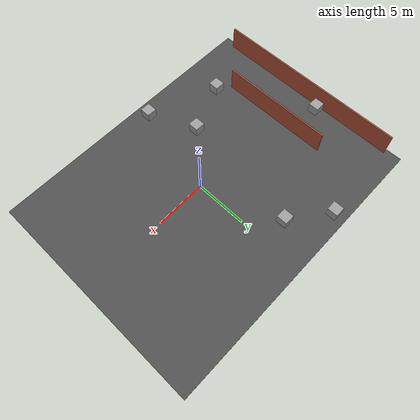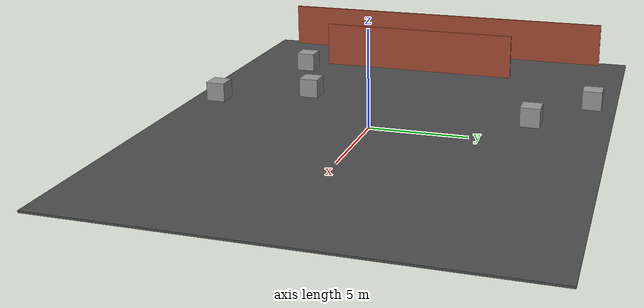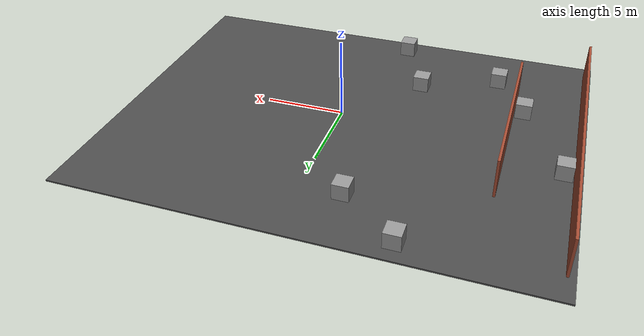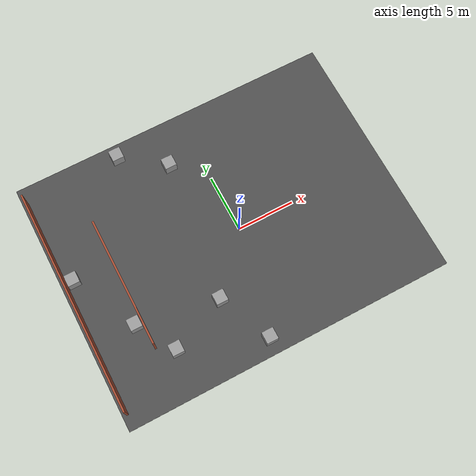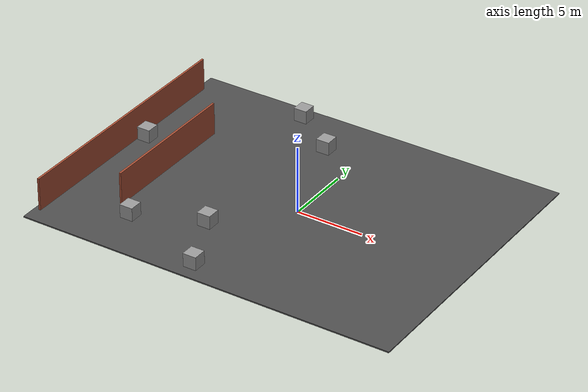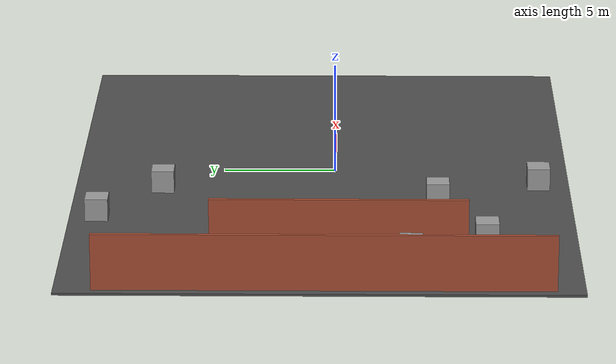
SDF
<sdf version="1.7">
 <world name="default">
  <model name="asphalt_plane">
   <static>1</static>
   <link name="link">
    <collision name="collision"><geometry><box><size>28.54 22.04 0.1</size></box></geometry></collision>
    <visual name="visual">
     <cast_shadows>0</cast_shadows>
     <geometry><box><size>28.54 22.04 0.1</size></box></geometry>
     <material>
      <script>
       <uri>model://asphalt_plane/materials/scripts</uri>
       <uri>model://asphalt_plane/materials/textures</uri>
       <name>vrc/asphalt</name>
      </script>
     </material>
    </visual>
   </link>
   <pose>-0.719505 0.551979 0 0 -0 0</pose>
  </model>
  <model name="unit_box_clone">
   <pose>-9.02992 -6.55581 0.55 0 -0 5.6e-05</pose>
   <link name="link">
    <inertial>
     <mass>1</mass>
     <inertia>
      <ixx>0.166667</ixx>
      <ixy>0</ixy>
      <ixz>0</ixz>
      <iyy>0.166667</iyy>
      <iyz>0</iyz>
      <izz>0.166667</izz>
     </inertia>
    </inertial>
    <collision name="collision"><geometry><box><size>1 1 1</size></box></geometry></collision>
    <visual name="visual">
     <geometry><box><size>1 1 1</size></box></geometry>
     <material>
      <script><name>Gazebo/Grey</name><uri>file://media/materials/scripts/gazebo.material</uri></script>
     </material>
    </visual>
   </link>
  </model>
  <model name="unit_box_clone_0">
   <pose>-2.13904 -9.0825 0.55 0 -0 3.9e-05</pose>
   <link name="link">
    <inertial>
     <mass>1</mass>
     <inertia>
      <ixx>0.166667</ixx>
      <ixy>0</ixy>
      <ixz>0</ixz>
      <iyy>0.166667</iyy>
      <iyz>0</iyz>
      <izz>0.166667</izz>
     </inertia>
    </inertial>
    <collision name="collision"><geometry><box><size>1 1 1</size></box></geometry></collision>
    <visual name="visual">
     <geometry><box><size>1 1 1</size></box></geometry>
     <material>
      <script><name>Gazebo/Grey</name><uri>file://media/materials/scripts/gazebo.material</uri></script>
     </material>
    </visual>
   </link>
  </model>
  <model name="unit_box_clone_11">
   <pose>-2.6168 7.65175 0.550002 -4e-06 -0 5.7e-05</pose>
   <link name="link">
    <inertial>
     <mass>1</mass>
     <inertia>
      <ixx>0.166667</ixx>
      <ixy>0</ixy>
      <ixz>0</ixz>
      <iyy>0.166667</iyy>
      <iyz>0</iyz>
      <izz>0.166667</izz>
     </inertia>
    </inertial>
    <collision name="collision"><geometry><box><size>1 1 1</size></box></geometry></collision>
    <visual name="visual">
     <geometry><box><size>1 1 1</size></box></geometry>
     <material>
      <script><name>Gazebo/Grey</name><uri>file://media/materials/scripts/gazebo.material</uri></script>
     </material>
    </visual>
   </link>
  </model>
  <model name="unit_box_clone_12">
   <pose>-6.20184 10.3429 0.550002 -4e-06 -0 5.5e-05</pose>
   <link name="link">
    <inertial>
     <mass>1</mass>
     <inertia>
      <ixx>0.166667</ixx>
      <ixy>0</ixy>
      <ixz>0</ixz>
      <iyy>0.166667</iyy>
      <iyz>0</iyz>
      <izz>0.166667</izz>
     </inertia>
    </inertial>
    <collision name="collision"><geometry><box><size>1 1 1</size></box></geometry></collision>
    <visual name="visual">
     <geometry><box><size>1 1 1</size></box></geometry>
     <material>
      <script><name>Gazebo/Grey</name><uri>file://media/materials/scripts/gazebo.material</uri></script>
     </material>
    </visual>
   </link>
  </model>
  <model name="unit_box_clone_14">
   <pose>-13.9085 2.23418 0.550002 -4e-06 0 4.3e-05</pose>
   <link name="link">
    <inertial>
     <mass>1</mass>
     <inertia>
      <ixx>0.166667</ixx>
      <ixy>0</ixy>
      <ixz>0</ixz>
      <iyy>0.166667</iyy>
      <iyz>0</iyz>
      <izz>0.166667</izz>
     </inertia>
    </inertial>
    <collision name="collision"><geometry><box><size>1 1 1</size></box></geometry></collision>
    <visual name="visual">
     <geometry><box><size>1 1 1</size></box></geometry>
     <material>
      <script><name>Gazebo/Grey</name><uri>file://media/materials/scripts/gazebo.material</uri></script>
     </material>
    </visual>
   </link>
  </model>
  <model name="unit_box_clone_16">
   <pose>-11.0431 -3.28247 0.550002 -4e-06 0 4.8e-05</pose>
   <link name="link">
    <inertial>
     <mass>1</mass>
     <inertia>
      <ixx>0.166667</ixx>
      <ixy>0</ixy>
      <ixz>0</ixz>
      <iyy>0.166667</iyy>
      <iyz>0</iyz>
      <izz>0.166667</izz>
     </inertia>
    </inertial>
    <collision name="collision"><geometry><box><size>1 1 1</size></box></geometry></collision>
    <visual name="visual">
     <geometry><box><size>1 1 1</size></box></geometry>
     <material>
      <script><name>Gazebo/Grey</name><uri>file://media/materials/scripts/gazebo.material</uri></script>
     </material>
    </visual>
   </link>
  </model>
  <model name="unit_box_clone_clone">
   <pose>-4.15816 -4.55216 0.550002 -4e-06 0 5.9e-05</pose>
   <link name="link">
    <inertial>
     <mass>1</mass>
     <inertia>
      <ixx>0.166667</ixx>
      <ixy>0</ixy>
      <ixz>0</ixz>
      <iyy>0.166667</iyy>
      <iyz>0</iyz>
      <izz>0.166667</izz>
     </inertia>
    </inertial>
    <collision name="collision"><geometry><box><size>1 1 1</size></box></geometry></collision>
    <visual name="visual">
     <geometry><box><size>1 1 1</size></box></geometry>
     <material>
      <script><name>Gazebo/Grey</name><uri>file://media/materials/scripts/gazebo.material</uri></script>
     </material>
    </visual>
   </link>
  </model>
  <model name="Untitled_3">
   <pose>-7.31393 0.360051 0 0 -0 0</pose>
   <link name="Wall_0">
    <collision name="Wall_0_Collision">
     <geometry><box><size>19.25 0.15 2.5</size></box></geometry>
     <pose>0 0 1.25 0 -0 0</pose>
    </collision>
    <visual name="Wall_0_Visual">
     <pose>0 0 1.25 0 -0 0</pose>
     <geometry><box><size>19.25 0.15 2.5</size></box></geometry>
     <material>
      <script><uri>file://media/materials/scripts/gazebo.material</uri><name>Gazebo/Bricks</name></script>
      <ambient>1 1 1 1</ambient>
     </material>
     <meta><layer>0</layer></meta>
    </visual>
    <pose>-7.23893 0 0 0 -0 -1.5708</pose>
   </link>
   <link name="Wall_2">
    <collision name="Wall_2_Collision">
     <geometry><box><size>11 0.15 2.5</size></box></geometry>
     <pose>0 0 1.25 0 -0 0</pose>
    </collision>
    <visual name="Wall_2_Visual">
     <pose>0 0 1.25 0 -0 0</pose>
     <geometry><box><size>11 0.15 2.5</size></box></geometry>
     <material>
      <script><uri>file://media/materials/scripts/gazebo.material</uri><name>Gazebo/Bricks</name></script>
      <ambient>1 1 1 1</ambient>
     </material>
     <meta><layer>0</layer></meta>
    </visual>
    <pose>-3.10649 -0.578189 0 0 -0 -1.5708</pose>
   </link>
   <static>1</static>
  </model>
 </world>
</sdf>
